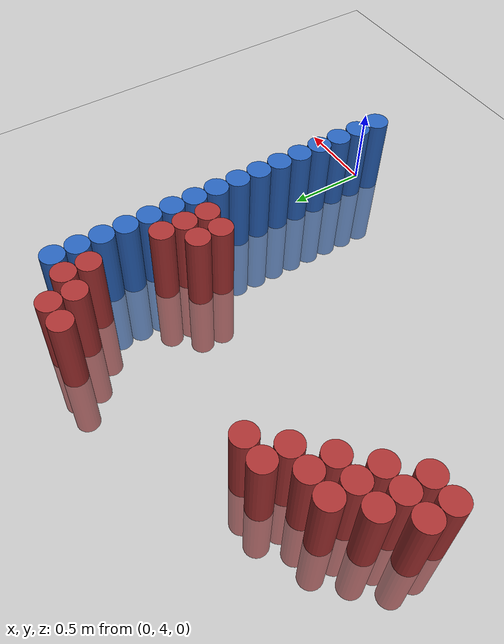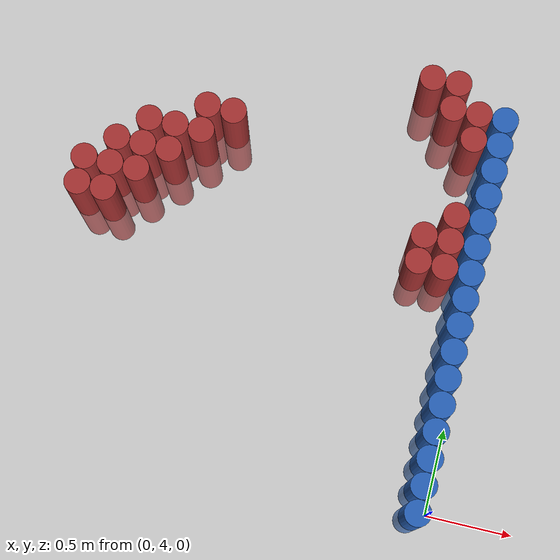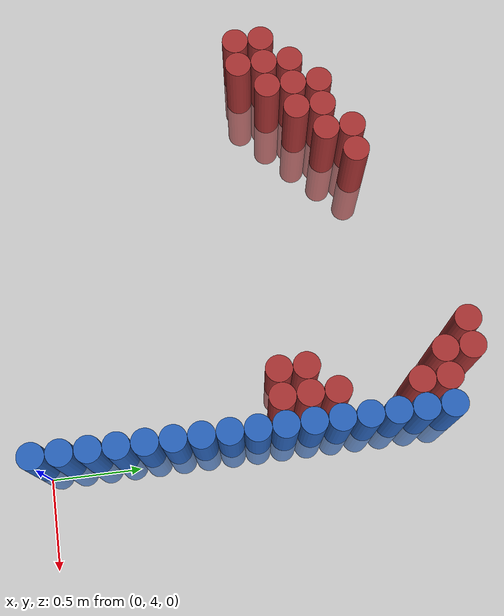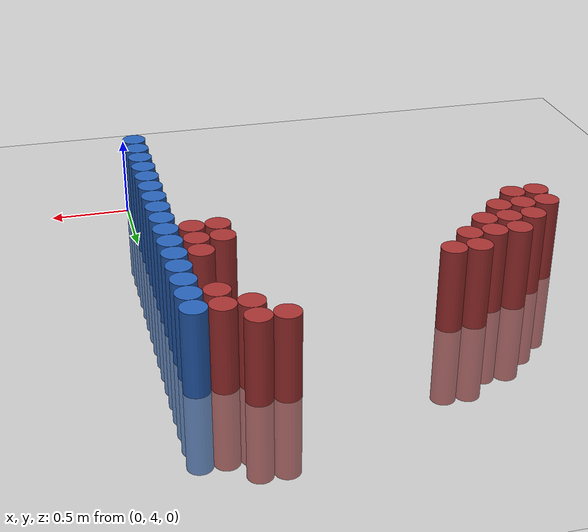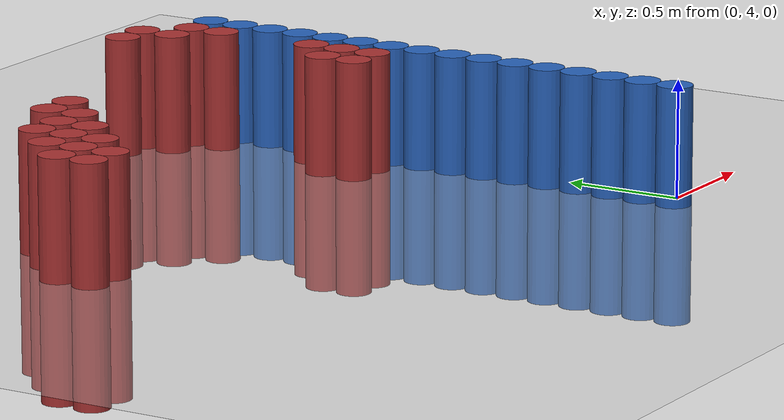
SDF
<sdf version="1.6">
 <world name="default">
  <model name="ground_plane">
   <static>1</static>
   <link name="link">
    <collision name="collision">
     <geometry><plane><normal>0 0 1</normal><size>100 100</size></plane></geometry>
     <surface><friction><ode><mu>100</mu><mu2>50</mu2></ode></friction></surface>
    </collision>
    <visual name="visual">
     <cast_shadows>0</cast_shadows>
     <geometry><plane><normal>0 0 1</normal><size>100 100</size></plane></geometry>
     <material>
      <script><uri>file://media/materials/scripts/gazebo.material</uri><name>Gazebo/Grey</name></script>
     </material>
    </visual>
   </link>
  </model>
  <model name="unit_cylinder_80">
   <static>1</static>
   <pose>-0.075000 3.975000 0.000000 0.000000 0.000000 0.000000</pose>
   <link name="link">
    <inertial>
     <mass>1</mass>
     <inertia><ixx>0.145833</ixx><ixy>0</ixy><ixz>0</ixz><iyy>0.145833</iyy><iyz>0</iyz><izz>0.125</izz></inertia>
    </inertial>
    <collision name="collision">
     <geometry><cylinder><radius>0.075000</radius><length>1</length></cylinder></geometry>
    </collision>
    <visual name="visual">
     <geometry><cylinder><radius>0.075000</radius><length>1</length></cylinder></geometry>
     <material>
      <ambient>0.152000 0.379000 0.720000 1</ambient>
      <diffuse>0.152000 0.379000 0.720000 1</diffuse>
     </material>
     <material>
      <script><name>Gazebo/Grey</name><uri>file://media/materials/scripts/gazebo.material</uri></script>
     </material>
    </visual>
    <sensor name="sensor_contact" type="contact"><contact><collision>collision</collision></contact></sensor>
   </link>
   <plugin filename="gz-sim-touchplugin-system" name="gz::sim::systems::TouchPlugin">
    <target>robot</target>
    <namespace>robot</namespace>
    <time>0.001</time>
    <enabled>true</enabled>
   </plugin>
  </model>
  <model name="unit_cylinder_82">
   <static>1</static>
   <pose>-0.075000 4.125000 0.000000 0.000000 0.000000 0.000000</pose>
   <link name="link">
    <inertial>
     <mass>1</mass>
     <inertia><ixx>0.145833</ixx><ixy>0</ixy><ixz>0</ixz><iyy>0.145833</iyy><iyz>0</iyz><izz>0.125</izz></inertia>
    </inertial>
    <collision name="collision">
     <geometry><cylinder><radius>0.075000</radius><length>1</length></cylinder></geometry>
    </collision>
    <visual name="visual">
     <geometry><cylinder><radius>0.075000</radius><length>1</length></cylinder></geometry>
     <material>
      <ambient>0.152000 0.379000 0.720000 1</ambient>
      <diffuse>0.152000 0.379000 0.720000 1</diffuse>
     </material>
     <material>
      <script><name>Gazebo/Grey</name><uri>file://media/materials/scripts/gazebo.material</uri></script>
     </material>
    </visual>
    <sensor name="sensor_contact" type="contact"><contact><collision>collision</collision></contact></sensor>
   </link>
   <plugin filename="gz-sim-touchplugin-system" name="gz::sim::systems::TouchPlugin">
    <target>robot</target>
    <namespace>robot</namespace>
    <time>0.001</time>
    <enabled>true</enabled>
   </plugin>
  </model>
  <model name="unit_cylinder_84">
   <static>1</static>
   <pose>-0.075000 4.275000 0.000000 0.000000 0.000000 0.000000</pose>
   <link name="link">
    <inertial>
     <mass>1</mass>
     <inertia><ixx>0.145833</ixx><ixy>0</ixy><ixz>0</ixz><iyy>0.145833</iyy><iyz>0</iyz><izz>0.125</izz></inertia>
    </inertial>
    <collision name="collision">
     <geometry><cylinder><radius>0.075000</radius><length>1</length></cylinder></geometry>
    </collision>
    <visual name="visual">
     <geometry><cylinder><radius>0.075000</radius><length>1</length></cylinder></geometry>
     <material>
      <ambient>0.152000 0.379000 0.720000 1</ambient>
      <diffuse>0.152000 0.379000 0.720000 1</diffuse>
     </material>
     <material>
      <script><name>Gazebo/Grey</name><uri>file://media/materials/scripts/gazebo.material</uri></script>
     </material>
    </visual>
    <sensor name="sensor_contact" type="contact"><contact><collision>collision</collision></contact></sensor>
   </link>
   <plugin filename="gz-sim-touchplugin-system" name="gz::sim::systems::TouchPlugin">
    <target>robot</target>
    <namespace>robot</namespace>
    <time>0.001</time>
    <enabled>true</enabled>
   </plugin>
  </model>
  <model name="unit_cylinder_86">
   <static>1</static>
   <pose>-0.075000 4.425000 0.000000 0.000000 0.000000 0.000000</pose>
   <link name="link">
    <inertial>
     <mass>1</mass>
     <inertia><ixx>0.145833</ixx><ixy>0</ixy><ixz>0</ixz><iyy>0.145833</iyy><iyz>0</iyz><izz>0.125</izz></inertia>
    </inertial>
    <collision name="collision">
     <geometry><cylinder><radius>0.075000</radius><length>1</length></cylinder></geometry>
    </collision>
    <visual name="visual">
     <geometry><cylinder><radius>0.075000</radius><length>1</length></cylinder></geometry>
     <material>
      <ambient>0.152000 0.379000 0.720000 1</ambient>
      <diffuse>0.152000 0.379000 0.720000 1</diffuse>
     </material>
     <material>
      <script><name>Gazebo/Grey</name><uri>file://media/materials/scripts/gazebo.material</uri></script>
     </material>
    </visual>
    <sensor name="sensor_contact" type="contact"><contact><collision>collision</collision></contact></sensor>
   </link>
   <plugin filename="gz-sim-touchplugin-system" name="gz::sim::systems::TouchPlugin">
    <target>robot</target>
    <namespace>robot</namespace>
    <time>0.001</time>
    <enabled>true</enabled>
   </plugin>
  </model>
  <model name="unit_cylinder_88">
   <static>1</static>
   <pose>-0.075000 4.575000 0.000000 0.000000 0.000000 0.000000</pose>
   <link name="link">
    <inertial>
     <mass>1</mass>
     <inertia><ixx>0.145833</ixx><ixy>0</ixy><ixz>0</ixz><iyy>0.145833</iyy><iyz>0</iyz><izz>0.125</izz></inertia>
    </inertial>
    <collision name="collision">
     <geometry><cylinder><radius>0.075000</radius><length>1</length></cylinder></geometry>
    </collision>
    <visual name="visual">
     <geometry><cylinder><radius>0.075000</radius><length>1</length></cylinder></geometry>
     <material>
      <ambient>0.152000 0.379000 0.720000 1</ambient>
      <diffuse>0.152000 0.379000 0.720000 1</diffuse>
     </material>
     <material>
      <script><name>Gazebo/Grey</name><uri>file://media/materials/scripts/gazebo.material</uri></script>
     </material>
    </visual>
    <sensor name="sensor_contact" type="contact"><contact><collision>collision</collision></contact></sensor>
   </link>
   <plugin filename="gz-sim-touchplugin-system" name="gz::sim::systems::TouchPlugin">
    <target>robot</target>
    <namespace>robot</namespace>
    <time>0.001</time>
    <enabled>true</enabled>
   </plugin>
  </model>
  <model name="unit_cylinder_90">
   <static>1</static>
   <pose>-0.075000 4.725000 0.000000 0.000000 0.000000 0.000000</pose>
   <link name="link">
    <inertial>
     <mass>1</mass>
     <inertia><ixx>0.145833</ixx><ixy>0</ixy><ixz>0</ixz><iyy>0.145833</iyy><iyz>0</iyz><izz>0.125</izz></inertia>
    </inertial>
    <collision name="collision">
     <geometry><cylinder><radius>0.075000</radius><length>1</length></cylinder></geometry>
    </collision>
    <visual name="visual">
     <geometry><cylinder><radius>0.075000</radius><length>1</length></cylinder></geometry>
     <material>
      <ambient>0.152000 0.379000 0.720000 1</ambient>
      <diffuse>0.152000 0.379000 0.720000 1</diffuse>
     </material>
     <material>
      <script><name>Gazebo/Grey</name><uri>file://media/materials/scripts/gazebo.material</uri></script>
     </material>
    </visual>
    <sensor name="sensor_contact" type="contact"><contact><collision>collision</collision></contact></sensor>
   </link>
   <plugin filename="gz-sim-touchplugin-system" name="gz::sim::systems::TouchPlugin">
    <target>robot</target>
    <namespace>robot</namespace>
    <time>0.001</time>
    <enabled>true</enabled>
   </plugin>
  </model>
  <model name="unit_cylinder_92">
   <static>1</static>
   <pose>-0.075000 4.875000 0.000000 0.000000 0.000000 0.000000</pose>
   <link name="link">
    <inertial>
     <mass>1</mass>
     <inertia><ixx>0.145833</ixx><ixy>0</ixy><ixz>0</ixz><iyy>0.145833</iyy><iyz>0</iyz><izz>0.125</izz></inertia>
    </inertial>
    <collision name="collision">
     <geometry><cylinder><radius>0.075000</radius><length>1</length></cylinder></geometry>
    </collision>
    <visual name="visual">
     <geometry><cylinder><radius>0.075000</radius><length>1</length></cylinder></geometry>
     <material>
      <ambient>0.152000 0.379000 0.720000 1</ambient>
      <diffuse>0.152000 0.379000 0.720000 1</diffuse>
     </material>
     <material>
      <script><name>Gazebo/Grey</name><uri>file://media/materials/scripts/gazebo.material</uri></script>
     </material>
    </visual>
    <sensor name="sensor_contact" type="contact"><contact><collision>collision</collision></contact></sensor>
   </link>
   <plugin filename="gz-sim-touchplugin-system" name="gz::sim::systems::TouchPlugin">
    <target>robot</target>
    <namespace>robot</namespace>
    <time>0.001</time>
    <enabled>true</enabled>
   </plugin>
  </model>
  <model name="unit_cylinder_94">
   <static>1</static>
   <pose>-0.075000 5.025000 0.000000 0.000000 0.000000 0.000000</pose>
   <link name="link">
    <inertial>
     <mass>1</mass>
     <inertia><ixx>0.145833</ixx><ixy>0</ixy><ixz>0</ixz><iyy>0.145833</iyy><iyz>0</iyz><izz>0.125</izz></inertia>
    </inertial>
    <collision name="collision">
     <geometry><cylinder><radius>0.075000</radius><length>1</length></cylinder></geometry>
    </collision>
    <visual name="visual">
     <geometry><cylinder><radius>0.075000</radius><length>1</length></cylinder></geometry>
     <material>
      <ambient>0.152000 0.379000 0.720000 1</ambient>
      <diffuse>0.152000 0.379000 0.720000 1</diffuse>
     </material>
     <material>
      <script><name>Gazebo/Grey</name><uri>file://media/materials/scripts/gazebo.material</uri></script>
     </material>
    </visual>
    <sensor name="sensor_contact" type="contact"><contact><collision>collision</collision></contact></sensor>
   </link>
   <plugin filename="gz-sim-touchplugin-system" name="gz::sim::systems::TouchPlugin">
    <target>robot</target>
    <namespace>robot</namespace>
    <time>0.001</time>
    <enabled>true</enabled>
   </plugin>
  </model>
  <model name="unit_cylinder_198">
   <static>1</static>
   <pose>-2.325000 5.325000 0.000000 0.000000 0.000000 0.000000</pose>
   <link name="link">
    <inertial>
     <mass>1</mass>
     <inertia><ixx>0.145833</ixx><ixy>0</ixy><ixz>0</ixz><iyy>0.145833</iyy><iyz>0</iyz><izz>0.125</izz></inertia>
    </inertial>
    <collision name="collision">
     <geometry><cylinder><radius>0.075000</radius><length>1</length></cylinder></geometry>
    </collision>
    <visual name="visual">
     <geometry><cylinder><radius>0.075000</radius><length>1</length></cylinder></geometry>
     <material>
      <ambient>0.648000 0.192000 0.192000 1</ambient>
      <diffuse>0.648000 0.192000 0.192000 1</diffuse>
     </material>
     <material>
      <script><name>Gazebo/Grey</name><uri>file://media/materials/scripts/gazebo.material</uri></script>
     </material>
    </visual>
    <sensor name="sensor_contact" type="contact"><contact><collision>collision</collision></contact></sensor>
   </link>
   <plugin filename="gz-sim-touchplugin-system" name="gz::sim::systems::TouchPlugin">
    <target>robot</target>
    <namespace>robot</namespace>
    <time>0.001</time>
    <enabled>true</enabled>
   </plugin>
  </model>
  <model name="unit_cylinder_199">
   <static>1</static>
   <pose>-2.325000 5.475000 0.000000 0.000000 0.000000 0.000000</pose>
   <link name="link">
    <inertial>
     <mass>1</mass>
     <inertia><ixx>0.145833</ixx><ixy>0</ixy><ixz>0</ixz><iyy>0.145833</iyy><iyz>0</iyz><izz>0.125</izz></inertia>
    </inertial>
    <collision name="collision">
     <geometry><cylinder><radius>0.075000</radius><length>1</length></cylinder></geometry>
    </collision>
    <visual name="visual">
     <geometry><cylinder><radius>0.075000</radius><length>1</length></cylinder></geometry>
     <material>
      <ambient>0.648000 0.192000 0.192000 1</ambient>
      <diffuse>0.648000 0.192000 0.192000 1</diffuse>
     </material>
     <material>
      <script><name>Gazebo/Grey</name><uri>file://media/materials/scripts/gazebo.material</uri></script>
     </material>
    </visual>
    <sensor name="sensor_contact" type="contact"><contact><collision>collision</collision></contact></sensor>
   </link>
   <plugin filename="gz-sim-touchplugin-system" name="gz::sim::systems::TouchPlugin">
    <target>robot</target>
    <namespace>robot</namespace>
    <time>0.001</time>
    <enabled>true</enabled>
   </plugin>
  </model>
  <model name="unit_cylinder_203">
   <static>1</static>
   <pose>-2.175000 5.325000 0.000000 0.000000 0.000000 0.000000</pose>
   <link name="link">
    <inertial>
     <mass>1</mass>
     <inertia><ixx>0.145833</ixx><ixy>0</ixy><ixz>0</ixz><iyy>0.145833</iyy><iyz>0</iyz><izz>0.125</izz></inertia>
    </inertial>
    <collision name="collision">
     <geometry><cylinder><radius>0.075000</radius><length>1</length></cylinder></geometry>
    </collision>
    <visual name="visual">
     <geometry><cylinder><radius>0.075000</radius><length>1</length></cylinder></geometry>
     <material>
      <ambient>0.648000 0.192000 0.192000 1</ambient>
      <diffuse>0.648000 0.192000 0.192000 1</diffuse>
     </material>
     <material>
      <script><name>Gazebo/Grey</name><uri>file://media/materials/scripts/gazebo.material</uri></script>
     </material>
    </visual>
    <sensor name="sensor_contact" type="contact"><contact><collision>collision</collision></contact></sensor>
   </link>
   <plugin filename="gz-sim-touchplugin-system" name="gz::sim::systems::TouchPlugin">
    <target>robot</target>
    <namespace>robot</namespace>
    <time>0.001</time>
    <enabled>true</enabled>
   </plugin>
  </model>
  <model name="unit_cylinder_204">
   <static>1</static>
   <pose>-2.175000 5.475000 0.000000 0.000000 0.000000 0.000000</pose>
   <link name="link">
    <inertial>
     <mass>1</mass>
     <inertia><ixx>0.145833</ixx><ixy>0</ixy><ixz>0</ixz><iyy>0.145833</iyy><iyz>0</iyz><izz>0.125</izz></inertia>
    </inertial>
    <collision name="collision">
     <geometry><cylinder><radius>0.075000</radius><length>1</length></cylinder></geometry>
    </collision>
    <visual name="visual">
     <geometry><cylinder><radius>0.075000</radius><length>1</length></cylinder></geometry>
     <material>
      <ambient>0.648000 0.192000 0.192000 1</ambient>
      <diffuse>0.648000 0.192000 0.192000 1</diffuse>
     </material>
     <material>
      <script><name>Gazebo/Grey</name><uri>file://media/materials/scripts/gazebo.material</uri></script>
     </material>
    </visual>
    <sensor name="sensor_contact" type="contact"><contact><collision>collision</collision></contact></sensor>
   </link>
   <plugin filename="gz-sim-touchplugin-system" name="gz::sim::systems::TouchPlugin">
    <target>robot</target>
    <namespace>robot</namespace>
    <time>0.001</time>
    <enabled>true</enabled>
   </plugin>
  </model>
  <model name="unit_cylinder_205">
   <static>1</static>
   <pose>-2.175000 5.625000 0.000000 0.000000 0.000000 0.000000</pose>
   <link name="link">
    <inertial>
     <mass>1</mass>
     <inertia><ixx>0.145833</ixx><ixy>0</ixy><ixz>0</ixz><iyy>0.145833</iyy><iyz>0</iyz><izz>0.125</izz></inertia>
    </inertial>
    <collision name="collision">
     <geometry><cylinder><radius>0.075000</radius><length>1</length></cylinder></geometry>
    </collision>
    <visual name="visual">
     <geometry><cylinder><radius>0.075000</radius><length>1</length></cylinder></geometry>
     <material>
      <ambient>0.648000 0.192000 0.192000 1</ambient>
      <diffuse>0.648000 0.192000 0.192000 1</diffuse>
     </material>
     <material>
      <script><name>Gazebo/Grey</name><uri>file://media/materials/scripts/gazebo.material</uri></script>
     </material>
    </visual>
    <sensor name="sensor_contact" type="contact"><contact><collision>collision</collision></contact></sensor>
   </link>
   <plugin filename="gz-sim-touchplugin-system" name="gz::sim::systems::TouchPlugin">
    <target>robot</target>
    <namespace>robot</namespace>
    <time>0.001</time>
    <enabled>true</enabled>
   </plugin>
  </model>
  <model name="unit_cylinder_206">
   <static>1</static>
   <pose>-2.025000 5.475000 0.000000 0.000000 0.000000 0.000000</pose>
   <link name="link">
    <inertial>
     <mass>1</mass>
     <inertia><ixx>0.145833</ixx><ixy>0</ixy><ixz>0</ixz><iyy>0.145833</iyy><iyz>0</iyz><izz>0.125</izz></inertia>
    </inertial>
    <collision name="collision">
     <geometry><cylinder><radius>0.075000</radius><length>1</length></cylinder></geometry>
    </collision>
    <visual name="visual">
     <geometry><cylinder><radius>0.075000</radius><length>1</length></cylinder></geometry>
     <material>
      <ambient>0.648000 0.192000 0.192000 1</ambient>
      <diffuse>0.648000 0.192000 0.192000 1</diffuse>
     </material>
     <material>
      <script><name>Gazebo/Grey</name><uri>file://media/materials/scripts/gazebo.material</uri></script>
     </material>
    </visual>
    <sensor name="sensor_contact" type="contact"><contact><collision>collision</collision></contact></sensor>
   </link>
   <plugin filename="gz-sim-touchplugin-system" name="gz::sim::systems::TouchPlugin">
    <target>robot</target>
    <namespace>robot</namespace>
    <time>0.001</time>
    <enabled>true</enabled>
   </plugin>
  </model>
  <model name="unit_cylinder_207">
   <static>1</static>
   <pose>-2.025000 5.625000 0.000000 0.000000 0.000000 0.000000</pose>
   <link name="link">
    <inertial>
     <mass>1</mass>
     <inertia><ixx>0.145833</ixx><ixy>0</ixy><ixz>0</ixz><iyy>0.145833</iyy><iyz>0</iyz><izz>0.125</izz></inertia>
    </inertial>
    <collision name="collision">
     <geometry><cylinder><radius>0.075000</radius><length>1</length></cylinder></geometry>
    </collision>
    <visual name="visual">
     <geometry><cylinder><radius>0.075000</radius><length>1</length></cylinder></geometry>
     <material>
      <ambient>0.648000 0.192000 0.192000 1</ambient>
      <diffuse>0.648000 0.192000 0.192000 1</diffuse>
     </material>
     <material>
      <script><name>Gazebo/Grey</name><uri>file://media/materials/scripts/gazebo.material</uri></script>
     </material>
    </visual>
    <sensor name="sensor_contact" type="contact"><contact><collision>collision</collision></contact></sensor>
   </link>
   <plugin filename="gz-sim-touchplugin-system" name="gz::sim::systems::TouchPlugin">
    <target>robot</target>
    <namespace>robot</namespace>
    <time>0.001</time>
    <enabled>true</enabled>
   </plugin>
  </model>
  <model name="unit_cylinder_208">
   <static>1</static>
   <pose>-2.025000 5.775000 0.000000 0.000000 0.000000 0.000000</pose>
   <link name="link">
    <inertial>
     <mass>1</mass>
     <inertia><ixx>0.145833</ixx><ixy>0</ixy><ixz>0</ixz><iyy>0.145833</iyy><iyz>0</iyz><izz>0.125</izz></inertia>
    </inertial>
    <collision name="collision">
     <geometry><cylinder><radius>0.075000</radius><length>1</length></cylinder></geometry>
    </collision>
    <visual name="visual">
     <geometry><cylinder><radius>0.075000</radius><length>1</length></cylinder></geometry>
     <material>
      <ambient>0.648000 0.192000 0.192000 1</ambient>
      <diffuse>0.648000 0.192000 0.192000 1</diffuse>
     </material>
     <material>
      <script><name>Gazebo/Grey</name><uri>file://media/materials/scripts/gazebo.material</uri></script>
     </material>
    </visual>
    <sensor name="sensor_contact" type="contact"><contact><collision>collision</collision></contact></sensor>
   </link>
   <plugin filename="gz-sim-touchplugin-system" name="gz::sim::systems::TouchPlugin">
    <target>robot</target>
    <namespace>robot</namespace>
    <time>0.001</time>
    <enabled>true</enabled>
   </plugin>
  </model>
  <model name="unit_cylinder_209">
   <static>1</static>
   <pose>-1.875000 5.625000 0.000000 0.000000 0.000000 0.000000</pose>
   <link name="link">
    <inertial>
     <mass>1</mass>
     <inertia><ixx>0.145833</ixx><ixy>0</ixy><ixz>0</ixz><iyy>0.145833</iyy><iyz>0</iyz><izz>0.125</izz></inertia>
    </inertial>
    <collision name="collision">
     <geometry><cylinder><radius>0.075000</radius><length>1</length></cylinder></geometry>
    </collision>
    <visual name="visual">
     <geometry><cylinder><radius>0.075000</radius><length>1</length></cylinder></geometry>
     <material>
      <ambient>0.648000 0.192000 0.192000 1</ambient>
      <diffuse>0.648000 0.192000 0.192000 1</diffuse>
     </material>
     <material>
      <script><name>Gazebo/Grey</name><uri>file://media/materials/scripts/gazebo.material</uri></script>
     </material>
    </visual>
    <sensor name="sensor_contact" type="contact"><contact><collision>collision</collision></contact></sensor>
   </link>
   <plugin filename="gz-sim-touchplugin-system" name="gz::sim::systems::TouchPlugin">
    <target>robot</target>
    <namespace>robot</namespace>
    <time>0.001</time>
    <enabled>true</enabled>
   </plugin>
  </model>
  <model name="unit_cylinder_210">
   <static>1</static>
   <pose>-1.875000 5.775000 0.000000 0.000000 0.000000 0.000000</pose>
   <link name="link">
    <inertial>
     <mass>1</mass>
     <inertia><ixx>0.145833</ixx><ixy>0</ixy><ixz>0</ixz><iyy>0.145833</iyy><iyz>0</iyz><izz>0.125</izz></inertia>
    </inertial>
    <collision name="collision">
     <geometry><cylinder><radius>0.075000</radius><length>1</length></cylinder></geometry>
    </collision>
    <visual name="visual">
     <geometry><cylinder><radius>0.075000</radius><length>1</length></cylinder></geometry>
     <material>
      <ambient>0.648000 0.192000 0.192000 1</ambient>
      <diffuse>0.648000 0.192000 0.192000 1</diffuse>
     </material>
     <material>
      <script><name>Gazebo/Grey</name><uri>file://media/materials/scripts/gazebo.material</uri></script>
     </material>
    </visual>
    <sensor name="sensor_contact" type="contact"><contact><collision>collision</collision></contact></sensor>
   </link>
   <plugin filename="gz-sim-touchplugin-system" name="gz::sim::systems::TouchPlugin">
    <target>robot</target>
    <namespace>robot</namespace>
    <time>0.001</time>
    <enabled>true</enabled>
   </plugin>
  </model>
  <model name="unit_cylinder_214">
   <static>1</static>
   <pose>-1.725000 5.775000 0.000000 0.000000 0.000000 0.000000</pose>
   <link name="link">
    <inertial>
     <mass>1</mass>
     <inertia><ixx>0.145833</ixx><ixy>0</ixy><ixz>0</ixz><iyy>0.145833</iyy><iyz>0</iyz><izz>0.125</izz></inertia>
    </inertial>
    <collision name="collision">
     <geometry><cylinder><radius>0.075000</radius><length>1</length></cylinder></geometry>
    </collision>
    <visual name="visual">
     <geometry><cylinder><radius>0.075000</radius><length>1</length></cylinder></geometry>
     <material>
      <ambient>0.648000 0.192000 0.192000 1</ambient>
      <diffuse>0.648000 0.192000 0.192000 1</diffuse>
     </material>
     <material>
      <script><name>Gazebo/Grey</name><uri>file://media/materials/scripts/gazebo.material</uri></script>
     </material>
    </visual>
    <sensor name="sensor_contact" type="contact"><contact><collision>collision</collision></contact></sensor>
   </link>
   <plugin filename="gz-sim-touchplugin-system" name="gz::sim::systems::TouchPlugin">
    <target>robot</target>
    <namespace>robot</namespace>
    <time>0.001</time>
    <enabled>true</enabled>
   </plugin>
  </model>
  <model name="unit_cylinder_215">
   <static>1</static>
   <pose>-1.725000 5.925000 0.000000 0.000000 0.000000 0.000000</pose>
   <link name="link">
    <inertial>
     <mass>1</mass>
     <inertia><ixx>0.145833</ixx><ixy>0</ixy><ixz>0</ixz><iyy>0.145833</iyy><iyz>0</iyz><izz>0.125</izz></inertia>
    </inertial>
    <collision name="collision">
     <geometry><cylinder><radius>0.075000</radius><length>1</length></cylinder></geometry>
    </collision>
    <visual name="visual">
     <geometry><cylinder><radius>0.075000</radius><length>1</length></cylinder></geometry>
     <material>
      <ambient>0.648000 0.192000 0.192000 1</ambient>
      <diffuse>0.648000 0.192000 0.192000 1</diffuse>
     </material>
     <material>
      <script><name>Gazebo/Grey</name><uri>file://media/materials/scripts/gazebo.material</uri></script>
     </material>
    </visual>
    <sensor name="sensor_contact" type="contact"><contact><collision>collision</collision></contact></sensor>
   </link>
   <plugin filename="gz-sim-touchplugin-system" name="gz::sim::systems::TouchPlugin">
    <target>robot</target>
    <namespace>robot</namespace>
    <time>0.001</time>
    <enabled>true</enabled>
   </plugin>
  </model>
  <model name="unit_cylinder_218">
   <static>1</static>
   <pose>-1.575000 5.925000 0.000000 0.000000 0.000000 0.000000</pose>
   <link name="link">
    <inertial>
     <mass>1</mass>
     <inertia><ixx>0.145833</ixx><ixy>0</ixy><ixz>0</ixz><iyy>0.145833</iyy><iyz>0</iyz><izz>0.125</izz></inertia>
    </inertial>
    <collision name="collision">
     <geometry><cylinder><radius>0.075000</radius><length>1</length></cylinder></geometry>
    </collision>
    <visual name="visual">
     <geometry><cylinder><radius>0.075000</radius><length>1</length></cylinder></geometry>
     <material>
      <ambient>0.648000 0.192000 0.192000 1</ambient>
      <diffuse>0.648000 0.192000 0.192000 1</diffuse>
     </material>
     <material>
      <script><name>Gazebo/Grey</name><uri>file://media/materials/scripts/gazebo.material</uri></script>
     </material>
    </visual>
    <sensor name="sensor_contact" type="contact"><contact><collision>collision</collision></contact></sensor>
   </link>
   <plugin filename="gz-sim-touchplugin-system" name="gz::sim::systems::TouchPlugin">
    <target>robot</target>
    <namespace>robot</namespace>
    <time>0.001</time>
    <enabled>true</enabled>
   </plugin>
  </model>
  <model name="unit_cylinder_244">
   <static>1</static>
   <pose>-0.525000 6.375000 0.000000 0.000000 0.000000 0.000000</pose>
   <link name="link">
    <inertial>
     <mass>1</mass>
     <inertia><ixx>0.145833</ixx><ixy>0</ixy><ixz>0</ixz><iyy>0.145833</iyy><iyz>0</iyz><izz>0.125</izz></inertia>
    </inertial>
    <collision name="collision">
     <geometry><cylinder><radius>0.075000</radius><length>1</length></cylinder></geometry>
    </collision>
    <visual name="visual">
     <geometry><cylinder><radius>0.075000</radius><length>1</length></cylinder></geometry>
     <material>
      <ambient>0.648000 0.192000 0.192000 1</ambient>
      <diffuse>0.648000 0.192000 0.192000 1</diffuse>
     </material>
     <material>
      <script><name>Gazebo/Grey</name><uri>file://media/materials/scripts/gazebo.material</uri></script>
     </material>
    </visual>
    <sensor name="sensor_contact" type="contact"><contact><collision>collision</collision></contact></sensor>
   </link>
   <plugin filename="gz-sim-touchplugin-system" name="gz::sim::systems::TouchPlugin">
    <target>robot</target>
    <namespace>robot</namespace>
    <time>0.001</time>
    <enabled>true</enabled>
   </plugin>
  </model>
  <model name="unit_cylinder_260">
   <static>1</static>
   <pose>-0.375000 5.325000 0.000000 0.000000 0.000000 0.000000</pose>
   <link name="link">
    <inertial>
     <mass>1</mass>
     <inertia><ixx>0.145833</ixx><ixy>0</ixy><ixz>0</ixz><iyy>0.145833</iyy><iyz>0</iyz><izz>0.125</izz></inertia>
    </inertial>
    <collision name="collision">
     <geometry><cylinder><radius>0.075000</radius><length>1</length></cylinder></geometry>
    </collision>
    <visual name="visual">
     <geometry><cylinder><radius>0.075000</radius><length>1</length></cylinder></geometry>
     <material>
      <ambient>0.648000 0.192000 0.192000 1</ambient>
      <diffuse>0.648000 0.192000 0.192000 1</diffuse>
     </material>
     <material>
      <script><name>Gazebo/Grey</name><uri>file://media/materials/scripts/gazebo.material</uri></script>
     </material>
    </visual>
    <sensor name="sensor_contact" type="contact"><contact><collision>collision</collision></contact></sensor>
   </link>
   <plugin filename="gz-sim-touchplugin-system" name="gz::sim::systems::TouchPlugin">
    <target>robot</target>
    <namespace>robot</namespace>
    <time>0.001</time>
    <enabled>true</enabled>
   </plugin>
  </model>
  <model name="unit_cylinder_261">
   <static>1</static>
   <pose>-0.375000 5.475000 0.000000 0.000000 0.000000 0.000000</pose>
   <link name="link">
    <inertial>
     <mass>1</mass>
     <inertia><ixx>0.145833</ixx><ixy>0</ixy><ixz>0</ixz><iyy>0.145833</iyy><iyz>0</iyz><izz>0.125</izz></inertia>
    </inertial>
    <collision name="collision">
     <geometry><cylinder><radius>0.075000</radius><length>1</length></cylinder></geometry>
    </collision>
    <visual name="visual">
     <geometry><cylinder><radius>0.075000</radius><length>1</length></cylinder></geometry>
     <material>
      <ambient>0.648000 0.192000 0.192000 1</ambient>
      <diffuse>0.648000 0.192000 0.192000 1</diffuse>
     </material>
     <material>
      <script><name>Gazebo/Grey</name><uri>file://media/materials/scripts/gazebo.material</uri></script>
     </material>
    </visual>
    <sensor name="sensor_contact" type="contact"><contact><collision>collision</collision></contact></sensor>
   </link>
   <plugin filename="gz-sim-touchplugin-system" name="gz::sim::systems::TouchPlugin">
    <target>robot</target>
    <namespace>robot</namespace>
    <time>0.001</time>
    <enabled>true</enabled>
   </plugin>
  </model>
  <model name="unit_cylinder_262">
   <static>1</static>
   <pose>-0.375000 6.225000 0.000000 0.000000 0.000000 0.000000</pose>
   <link name="link">
    <inertial>
     <mass>1</mass>
     <inertia><ixx>0.145833</ixx><ixy>0</ixy><ixz>0</ixz><iyy>0.145833</iyy><iyz>0</iyz><izz>0.125</izz></inertia>
    </inertial>
    <collision name="collision">
     <geometry><cylinder><radius>0.075000</radius><length>1</length></cylinder></geometry>
    </collision>
    <visual name="visual">
     <geometry><cylinder><radius>0.075000</radius><length>1</length></cylinder></geometry>
     <material>
      <ambient>0.648000 0.192000 0.192000 1</ambient>
      <diffuse>0.648000 0.192000 0.192000 1</diffuse>
     </material>
     <material>
      <script><name>Gazebo/Grey</name><uri>file://media/materials/scripts/gazebo.material</uri></script>
     </material>
    </visual>
    <sensor name="sensor_contact" type="contact"><contact><collision>collision</collision></contact></sensor>
   </link>
   <plugin filename="gz-sim-touchplugin-system" name="gz::sim::systems::TouchPlugin">
    <target>robot</target>
    <namespace>robot</namespace>
    <time>0.001</time>
    <enabled>true</enabled>
   </plugin>
  </model>
  <model name="unit_cylinder_263">
   <static>1</static>
   <pose>-0.375000 6.375000 0.000000 0.000000 0.000000 0.000000</pose>
   <link name="link">
    <inertial>
     <mass>1</mass>
     <inertia><ixx>0.145833</ixx><ixy>0</ixy><ixz>0</ixz><iyy>0.145833</iyy><iyz>0</iyz><izz>0.125</izz></inertia>
    </inertial>
    <collision name="collision">
     <geometry><cylinder><radius>0.075000</radius><length>1</length></cylinder></geometry>
    </collision>
    <visual name="visual">
     <geometry><cylinder><radius>0.075000</radius><length>1</length></cylinder></geometry>
     <material>
      <ambient>0.648000 0.192000 0.192000 1</ambient>
      <diffuse>0.648000 0.192000 0.192000 1</diffuse>
     </material>
     <material>
      <script><name>Gazebo/Grey</name><uri>file://media/materials/scripts/gazebo.material</uri></script>
     </material>
    </visual>
    <sensor name="sensor_contact" type="contact"><contact><collision>collision</collision></contact></sensor>
   </link>
   <plugin filename="gz-sim-touchplugin-system" name="gz::sim::systems::TouchPlugin">
    <target>robot</target>
    <namespace>robot</namespace>
    <time>0.001</time>
    <enabled>true</enabled>
   </plugin>
  </model>
  <model name="unit_cylinder_271">
   <static>1</static>
   <pose>-0.225000 5.325000 0.000000 0.000000 0.000000 0.000000</pose>
   <link name="link">
    <inertial>
     <mass>1</mass>
     <inertia><ixx>0.145833</ixx><ixy>0</ixy><ixz>0</ixz><iyy>0.145833</iyy><iyz>0</iyz><izz>0.125</izz></inertia>
    </inertial>
    <collision name="collision">
     <geometry><cylinder><radius>0.075000</radius><length>1</length></cylinder></geometry>
    </collision>
    <visual name="visual">
     <geometry><cylinder><radius>0.075000</radius><length>1</length></cylinder></geometry>
     <material>
      <ambient>0.648000 0.192000 0.192000 1</ambient>
      <diffuse>0.648000 0.192000 0.192000 1</diffuse>
     </material>
     <material>
      <script><name>Gazebo/Grey</name><uri>file://media/materials/scripts/gazebo.material</uri></script>
     </material>
    </visual>
    <sensor name="sensor_contact" type="contact"><contact><collision>collision</collision></contact></sensor>
   </link>
   <plugin filename="gz-sim-touchplugin-system" name="gz::sim::systems::TouchPlugin">
    <target>robot</target>
    <namespace>robot</namespace>
    <time>0.001</time>
    <enabled>true</enabled>
   </plugin>
  </model>
  <model name="unit_cylinder_272">
   <static>1</static>
   <pose>-0.225000 5.475000 0.000000 0.000000 0.000000 0.000000</pose>
   <link name="link">
    <inertial>
     <mass>1</mass>
     <inertia><ixx>0.145833</ixx><ixy>0</ixy><ixz>0</ixz><iyy>0.145833</iyy><iyz>0</iyz><izz>0.125</izz></inertia>
    </inertial>
    <collision name="collision">
     <geometry><cylinder><radius>0.075000</radius><length>1</length></cylinder></geometry>
    </collision>
    <visual name="visual">
     <geometry><cylinder><radius>0.075000</radius><length>1</length></cylinder></geometry>
     <material>
      <ambient>0.648000 0.192000 0.192000 1</ambient>
      <diffuse>0.648000 0.192000 0.192000 1</diffuse>
     </material>
     <material>
      <script><name>Gazebo/Grey</name><uri>file://media/materials/scripts/gazebo.material</uri></script>
     </material>
    </visual>
    <sensor name="sensor_contact" type="contact"><contact><collision>collision</collision></contact></sensor>
   </link>
   <plugin filename="gz-sim-touchplugin-system" name="gz::sim::systems::TouchPlugin">
    <target>robot</target>
    <namespace>robot</namespace>
    <time>0.001</time>
    <enabled>true</enabled>
   </plugin>
  </model>
  <model name="unit_cylinder_273">
   <static>1</static>
   <pose>-0.225000 5.625000 0.000000 0.000000 0.000000 0.000000</pose>
   <link name="link">
    <inertial>
     <mass>1</mass>
     <inertia><ixx>0.145833</ixx><ixy>0</ixy><ixz>0</ixz><iyy>0.145833</iyy><iyz>0</iyz><izz>0.125</izz></inertia>
    </inertial>
    <collision name="collision">
     <geometry><cylinder><radius>0.075000</radius><length>1</length></cylinder></geometry>
    </collision>
    <visual name="visual">
     <geometry><cylinder><radius>0.075000</radius><length>1</length></cylinder></geometry>
     <material>
      <ambient>0.648000 0.192000 0.192000 1</ambient>
      <diffuse>0.648000 0.192000 0.192000 1</diffuse>
     </material>
     <material>
      <script><name>Gazebo/Grey</name><uri>file://media/materials/scripts/gazebo.material</uri></script>
     </material>
    </visual>
    <sensor name="sensor_contact" type="contact"><contact><collision>collision</collision></contact></sensor>
   </link>
   <plugin filename="gz-sim-touchplugin-system" name="gz::sim::systems::TouchPlugin">
    <target>robot</target>
    <namespace>robot</namespace>
    <time>0.001</time>
    <enabled>true</enabled>
   </plugin>
  </model>
  <model name="unit_cylinder_274">
   <static>1</static>
   <pose>-0.225000 6.075000 0.000000 0.000000 0.000000 0.000000</pose>
   <link name="link">
    <inertial>
     <mass>1</mass>
     <inertia><ixx>0.145833</ixx><ixy>0</ixy><ixz>0</ixz><iyy>0.145833</iyy><iyz>0</iyz><izz>0.125</izz></inertia>
    </inertial>
    <collision name="collision">
     <geometry><cylinder><radius>0.075000</radius><length>1</length></cylinder></geometry>
    </collision>
    <visual name="visual">
     <geometry><cylinder><radius>0.075000</radius><length>1</length></cylinder></geometry>
     <material>
      <ambient>0.648000 0.192000 0.192000 1</ambient>
      <diffuse>0.648000 0.192000 0.192000 1</diffuse>
     </material>
     <material>
      <script><name>Gazebo/Grey</name><uri>file://media/materials/scripts/gazebo.material</uri></script>
     </material>
    </visual>
    <sensor name="sensor_contact" type="contact"><contact><collision>collision</collision></contact></sensor>
   </link>
   <plugin filename="gz-sim-touchplugin-system" name="gz::sim::systems::TouchPlugin">
    <target>robot</target>
    <namespace>robot</namespace>
    <time>0.001</time>
    <enabled>true</enabled>
   </plugin>
  </model>
  <model name="unit_cylinder_275">
   <static>1</static>
   <pose>-0.225000 6.225000 0.000000 0.000000 0.000000 0.000000</pose>
   <link name="link">
    <inertial>
     <mass>1</mass>
     <inertia><ixx>0.145833</ixx><ixy>0</ixy><ixz>0</ixz><iyy>0.145833</iyy><iyz>0</iyz><izz>0.125</izz></inertia>
    </inertial>
    <collision name="collision">
     <geometry><cylinder><radius>0.075000</radius><length>1</length></cylinder></geometry>
    </collision>
    <visual name="visual">
     <geometry><cylinder><radius>0.075000</radius><length>1</length></cylinder></geometry>
     <material>
      <ambient>0.648000 0.192000 0.192000 1</ambient>
      <diffuse>0.648000 0.192000 0.192000 1</diffuse>
     </material>
     <material>
      <script><name>Gazebo/Grey</name><uri>file://media/materials/scripts/gazebo.material</uri></script>
     </material>
    </visual>
    <sensor name="sensor_contact" type="contact"><contact><collision>collision</collision></contact></sensor>
   </link>
   <plugin filename="gz-sim-touchplugin-system" name="gz::sim::systems::TouchPlugin">
    <target>robot</target>
    <namespace>robot</namespace>
    <time>0.001</time>
    <enabled>true</enabled>
   </plugin>
  </model>
  <model name="unit_cylinder_285">
   <static>1</static>
   <pose>-0.075000 5.175000 0.000000 0.000000 0.000000 0.000000</pose>
   <link name="link">
    <inertial>
     <mass>1</mass>
     <inertia><ixx>0.145833</ixx><ixy>0</ixy><ixz>0</ixz><iyy>0.145833</iyy><iyz>0</iyz><izz>0.125</izz></inertia>
    </inertial>
    <collision name="collision">
     <geometry><cylinder><radius>0.075000</radius><length>1</length></cylinder></geometry>
    </collision>
    <visual name="visual">
     <geometry><cylinder><radius>0.075000</radius><length>1</length></cylinder></geometry>
     <material>
      <ambient>0.152000 0.379000 0.720000 1</ambient>
      <diffuse>0.152000 0.379000 0.720000 1</diffuse>
     </material>
     <material>
      <script><name>Gazebo/Grey</name><uri>file://media/materials/scripts/gazebo.material</uri></script>
     </material>
    </visual>
    <sensor name="sensor_contact" type="contact"><contact><collision>collision</collision></contact></sensor>
   </link>
   <plugin filename="gz-sim-touchplugin-system" name="gz::sim::systems::TouchPlugin">
    <target>robot</target>
    <namespace>robot</namespace>
    <time>0.001</time>
    <enabled>true</enabled>
   </plugin>
  </model>
  <model name="unit_cylinder_286">
   <static>1</static>
   <pose>-0.075000 5.325000 0.000000 0.000000 0.000000 0.000000</pose>
   <link name="link">
    <inertial>
     <mass>1</mass>
     <inertia><ixx>0.145833</ixx><ixy>0</ixy><ixz>0</ixz><iyy>0.145833</iyy><iyz>0</iyz><izz>0.125</izz></inertia>
    </inertial>
    <collision name="collision">
     <geometry><cylinder><radius>0.075000</radius><length>1</length></cylinder></geometry>
    </collision>
    <visual name="visual">
     <geometry><cylinder><radius>0.075000</radius><length>1</length></cylinder></geometry>
     <material>
      <ambient>0.152000 0.379000 0.720000 1</ambient>
      <diffuse>0.152000 0.379000 0.720000 1</diffuse>
     </material>
     <material>
      <script><name>Gazebo/Grey</name><uri>file://media/materials/scripts/gazebo.material</uri></script>
     </material>
    </visual>
    <sensor name="sensor_contact" type="contact"><contact><collision>collision</collision></contact></sensor>
   </link>
   <plugin filename="gz-sim-touchplugin-system" name="gz::sim::systems::TouchPlugin">
    <target>robot</target>
    <namespace>robot</namespace>
    <time>0.001</time>
    <enabled>true</enabled>
   </plugin>
  </model>
  <model name="unit_cylinder_287">
   <static>1</static>
   <pose>-0.075000 5.475000 0.000000 0.000000 0.000000 0.000000</pose>
   <link name="link">
    <inertial>
     <mass>1</mass>
     <inertia><ixx>0.145833</ixx><ixy>0</ixy><ixz>0</ixz><iyy>0.145833</iyy><iyz>0</iyz><izz>0.125</izz></inertia>
    </inertial>
    <collision name="collision">
     <geometry><cylinder><radius>0.075000</radius><length>1</length></cylinder></geometry>
    </collision>
    <visual name="visual">
     <geometry><cylinder><radius>0.075000</radius><length>1</length></cylinder></geometry>
     <material>
      <ambient>0.152000 0.379000 0.720000 1</ambient>
      <diffuse>0.152000 0.379000 0.720000 1</diffuse>
     </material>
     <material>
      <script><name>Gazebo/Grey</name><uri>file://media/materials/scripts/gazebo.material</uri></script>
     </material>
    </visual>
    <sensor name="sensor_contact" type="contact"><contact><collision>collision</collision></contact></sensor>
   </link>
   <plugin filename="gz-sim-touchplugin-system" name="gz::sim::systems::TouchPlugin">
    <target>robot</target>
    <namespace>robot</namespace>
    <time>0.001</time>
    <enabled>true</enabled>
   </plugin>
  </model>
  <model name="unit_cylinder_288">
   <static>1</static>
   <pose>-0.075000 5.625000 0.000000 0.000000 0.000000 0.000000</pose>
   <link name="link">
    <inertial>
     <mass>1</mass>
     <inertia><ixx>0.145833</ixx><ixy>0</ixy><ixz>0</ixz><iyy>0.145833</iyy><iyz>0</iyz><izz>0.125</izz></inertia>
    </inertial>
    <collision name="collision">
     <geometry><cylinder><radius>0.075000</radius><length>1</length></cylinder></geometry>
    </collision>
    <visual name="visual">
     <geometry><cylinder><radius>0.075000</radius><length>1</length></cylinder></geometry>
     <material>
      <ambient>0.152000 0.379000 0.720000 1</ambient>
      <diffuse>0.152000 0.379000 0.720000 1</diffuse>
     </material>
     <material>
      <script><name>Gazebo/Grey</name><uri>file://media/materials/scripts/gazebo.material</uri></script>
     </material>
    </visual>
    <sensor name="sensor_contact" type="contact"><contact><collision>collision</collision></contact></sensor>
   </link>
   <plugin filename="gz-sim-touchplugin-system" name="gz::sim::systems::TouchPlugin">
    <target>robot</target>
    <namespace>robot</namespace>
    <time>0.001</time>
    <enabled>true</enabled>
   </plugin>
  </model>
  <model name="unit_cylinder_289">
   <static>1</static>
   <pose>-0.075000 5.775000 0.000000 0.000000 0.000000 0.000000</pose>
   <link name="link">
    <inertial>
     <mass>1</mass>
     <inertia><ixx>0.145833</ixx><ixy>0</ixy><ixz>0</ixz><iyy>0.145833</iyy><iyz>0</iyz><izz>0.125</izz></inertia>
    </inertial>
    <collision name="collision">
     <geometry><cylinder><radius>0.075000</radius><length>1</length></cylinder></geometry>
    </collision>
    <visual name="visual">
     <geometry><cylinder><radius>0.075000</radius><length>1</length></cylinder></geometry>
     <material>
      <ambient>0.152000 0.379000 0.720000 1</ambient>
      <diffuse>0.152000 0.379000 0.720000 1</diffuse>
     </material>
     <material>
      <script><name>Gazebo/Grey</name><uri>file://media/materials/scripts/gazebo.material</uri></script>
     </material>
    </visual>
    <sensor name="sensor_contact" type="contact"><contact><collision>collision</collision></contact></sensor>
   </link>
   <plugin filename="gz-sim-touchplugin-system" name="gz::sim::systems::TouchPlugin">
    <target>robot</target>
    <namespace>robot</namespace>
    <time>0.001</time>
    <enabled>true</enabled>
   </plugin>
  </model>
  <model name="unit_cylinder_290">
   <static>1</static>
   <pose>-0.075000 5.925000 0.000000 0.000000 0.000000 0.000000</pose>
   <link name="link">
    <inertial>
     <mass>1</mass>
     <inertia><ixx>0.145833</ixx><ixy>0</ixy><ixz>0</ixz><iyy>0.145833</iyy><iyz>0</iyz><izz>0.125</izz></inertia>
    </inertial>
    <collision name="collision">
     <geometry><cylinder><radius>0.075000</radius><length>1</length></cylinder></geometry>
    </collision>
    <visual name="visual">
     <geometry><cylinder><radius>0.075000</radius><length>1</length></cylinder></geometry>
     <material>
      <ambient>0.152000 0.379000 0.720000 1</ambient>
      <diffuse>0.152000 0.379000 0.720000 1</diffuse>
     </material>
     <material>
      <script><name>Gazebo/Grey</name><uri>file://media/materials/scripts/gazebo.material</uri></script>
     </material>
    </visual>
    <sensor name="sensor_contact" type="contact"><contact><collision>collision</collision></contact></sensor>
   </link>
   <plugin filename="gz-sim-touchplugin-system" name="gz::sim::systems::TouchPlugin">
    <target>robot</target>
    <namespace>robot</namespace>
    <time>0.001</time>
    <enabled>true</enabled>
   </plugin>
  </model>
  <model name="unit_cylinder_291">
   <static>1</static>
   <pose>-0.075000 6.075000 0.000000 0.000000 0.000000 0.000000</pose>
   <link name="link">
    <inertial>
     <mass>1</mass>
     <inertia><ixx>0.145833</ixx><ixy>0</ixy><ixz>0</ixz><iyy>0.145833</iyy><iyz>0</iyz><izz>0.125</izz></inertia>
    </inertial>
    <collision name="collision">
     <geometry><cylinder><radius>0.075000</radius><length>1</length></cylinder></geometry>
    </collision>
    <visual name="visual">
     <geometry><cylinder><radius>0.075000</radius><length>1</length></cylinder></geometry>
     <material>
      <ambient>0.152000 0.379000 0.720000 1</ambient>
      <diffuse>0.152000 0.379000 0.720000 1</diffuse>
     </material>
     <material>
      <script><name>Gazebo/Grey</name><uri>file://media/materials/scripts/gazebo.material</uri></script>
     </material>
    </visual>
    <sensor name="sensor_contact" type="contact"><contact><collision>collision</collision></contact></sensor>
   </link>
   <plugin filename="gz-sim-touchplugin-system" name="gz::sim::systems::TouchPlugin">
    <target>robot</target>
    <namespace>robot</namespace>
    <time>0.001</time>
    <enabled>true</enabled>
   </plugin>
  </model>
  <model name="unit_cylinder_292">
   <static>1</static>
   <pose>-0.075000 6.225000 0.000000 0.000000 0.000000 0.000000</pose>
   <link name="link">
    <inertial>
     <mass>1</mass>
     <inertia><ixx>0.145833</ixx><ixy>0</ixy><ixz>0</ixz><iyy>0.145833</iyy><iyz>0</iyz><izz>0.125</izz></inertia>
    </inertial>
    <collision name="collision">
     <geometry><cylinder><radius>0.075000</radius><length>1</length></cylinder></geometry>
    </collision>
    <visual name="visual">
     <geometry><cylinder><radius>0.075000</radius><length>1</length></cylinder></geometry>
     <material>
      <ambient>0.152000 0.379000 0.720000 1</ambient>
      <diffuse>0.152000 0.379000 0.720000 1</diffuse>
     </material>
     <material>
      <script><name>Gazebo/Grey</name><uri>file://media/materials/scripts/gazebo.material</uri></script>
     </material>
    </visual>
    <sensor name="sensor_contact" type="contact"><contact><collision>collision</collision></contact></sensor>
   </link>
   <plugin filename="gz-sim-touchplugin-system" name="gz::sim::systems::TouchPlugin">
    <target>robot</target>
    <namespace>robot</namespace>
    <time>0.001</time>
    <enabled>true</enabled>
   </plugin>
  </model>
 </world>
</sdf>
